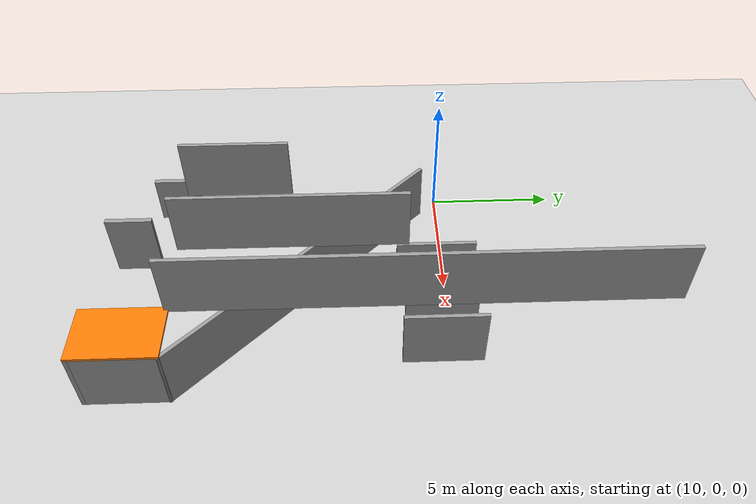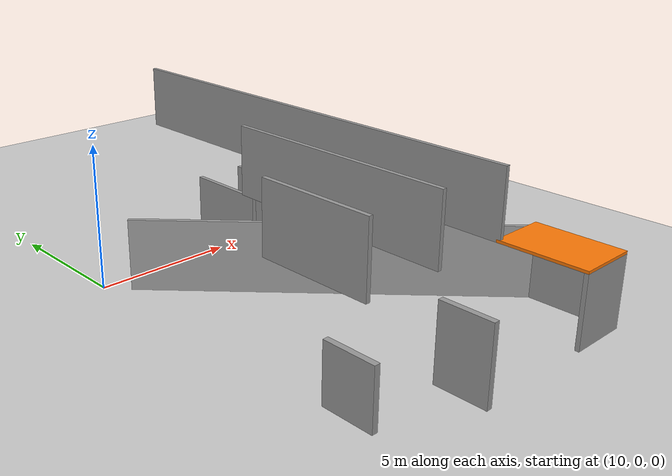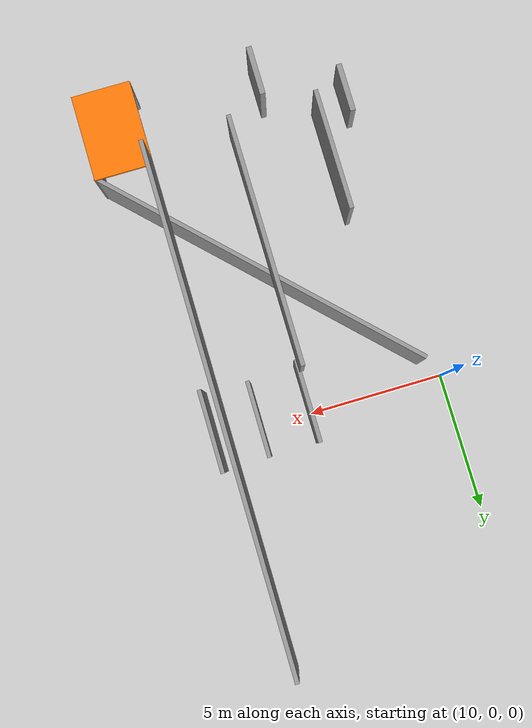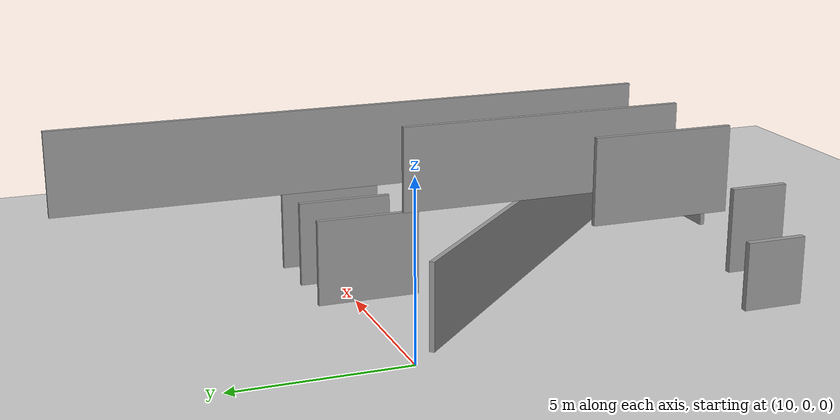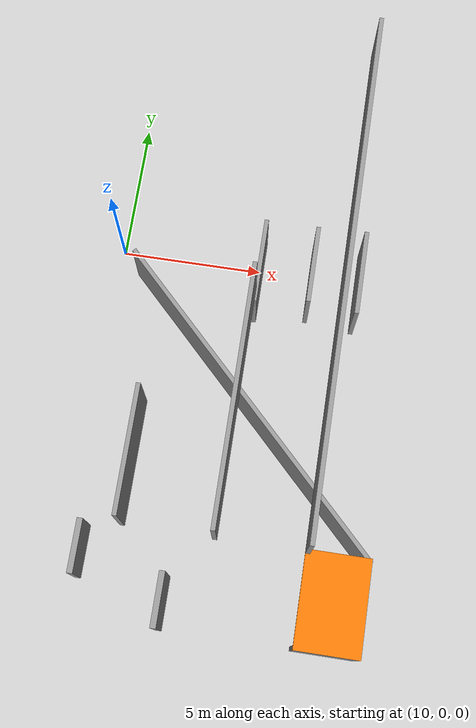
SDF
<sdf version="1.7">
 <world name="me5413_obstacle_world">
  <model name="ground_plane">
   <static>1</static>
   <link name="link">
    <collision name="collision">
     <geometry><plane><normal>0 0 1</normal><size>100 100</size></plane></geometry>
     <surface>
      <contact><collide_bitmask>65535</collide_bitmask></contact>
      <friction><ode><mu>100</mu><mu2>50</mu2></ode></friction>
     </surface>
    </collision>
    <visual name="visual">
     <cast_shadows>0</cast_shadows>
     <geometry><plane><normal>0 0 1</normal><size>100 100</size></plane></geometry>
     <material>
      <script><uri>file://media/materials/scripts/gazebo.material</uri><name>Gazebo/Grey</name></script>
     </material>
    </visual>
   </link>
  </model>
  <model name="smart_house_3_0">
   <link name="Floor_5">
    <pose>21.4845 -10.0155 2.5 0 -0 0</pose>
    <inertial>
     <inertia><ixx>1</ixx><ixy>0</ixy><ixz>0</ixz><iyy>1</iyy><iyz>0</iyz><izz>1</izz></inertia>
     <mass>1</mass>
    </inertial>
    <visual name="Floor_5_Visual">
     <pose>0 0 0.05 0 -0 0</pose>
     <geometry><box><size>2.15 3.15 0.1</size></box></geometry>
     <material>
      <script><uri>file://media/materials/scripts/gazebo.material</uri><name>Gazebo/Grey</name></script>
      <ambient>0.996078 0.47451 0.0196078 1</ambient>
      <shader type="pixel"/>
     </material>
     <meta><layer>1</layer></meta>
    </visual>
    <collision name="Floor_5_Collision">
     <pose>0 0 0.05 0 -0 0</pose>
     <geometry><box><size>2.15 3.15 0.1</size></box></geometry>
     <surface>
      <friction>
       <ode><mu>1</mu><mu2>1</mu2><fdir1>0 0 0</fdir1><slip1>0</slip1><slip2>0</slip2></ode>
       <torsional>
        <coefficient>1</coefficient>
        <patch_radius>0</patch_radius>
        <surface_radius>0</surface_radius>
        <use_patch_radius>1</use_patch_radius>
        <ode><slip>0</slip></ode>
       </torsional>
      </friction>
      <bounce><restitution_coefficient>0</restitution_coefficient><threshold>1e+06</threshold></bounce>
      <contact>
       <collide_without_contact>0</collide_without_contact>
       <collide_without_contact_bitmask>1</collide_without_contact_bitmask>
       <collide_bitmask>1</collide_bitmask>
       <ode>
        <soft_cfm>0</soft_cfm>
        <soft_erp>0.2</soft_erp>
        <kp>1e+13</kp>
        <kd>1</kd>
        <max_vel>0.01</max_vel>
        <min_depth>0</min_depth>
       </ode>
       <bullet>
        <split_impulse>1</split_impulse>
        <split_impulse_penetration_threshold>-0.01</split_impulse_penetration_threshold>
        <soft_cfm>0</soft_cfm>
        <soft_erp>0.2</soft_erp>
        <kp>1e+13</kp>
        <kd>1</kd>
       </bullet>
      </contact>
     </surface>
    </collision>
   </link>
   <link name="Wall_145">
    <pose>17.8529 -3.88398 0 0 -0 2.35619</pose>
    <inertial>
     <inertia><ixx>1</ixx><ixy>0</ixy><ixz>0</ixz><iyy>1</iyy><iyz>0</iyz><izz>1</izz></inertia>
     <mass>1</mass>
    </inertial>
    <visual name="Wall_145_Visual">
     <pose>0 0 1.25 0 -0 0</pose>
     <geometry><box><size>13.25 0.15 2.5</size></box></geometry>
     <material>
      <script><uri>file://media/materials/scripts/gazebo.material</uri><name>Gazebo/Grey</name></script>
      <ambient>1 1 1 1</ambient>
      <shader type="pixel"/>
     </material>
     <meta><layer>0</layer></meta>
    </visual>
    <collision name="Wall_145_Collision">
     <pose>0 0 1.25 0 -0 0</pose>
     <geometry><box><size>13.25 0.15 2.5</size></box></geometry>
     <surface>
      <friction>
       <ode><mu>1</mu><mu2>1</mu2><fdir1>0 0 0</fdir1><slip1>0</slip1><slip2>0</slip2></ode>
       <torsional>
        <coefficient>1</coefficient>
        <patch_radius>0</patch_radius>
        <surface_radius>0</surface_radius>
        <use_patch_radius>1</use_patch_radius>
        <ode><slip>0</slip></ode>
       </torsional>
      </friction>
      <bounce><restitution_coefficient>0</restitution_coefficient><threshold>1e+06</threshold></bounce>
      <contact>
       <collide_without_contact>0</collide_without_contact>
       <collide_without_contact_bitmask>1</collide_without_contact_bitmask>
       <collide_bitmask>1</collide_bitmask>
       <ode>
        <soft_cfm>0</soft_cfm>
        <soft_erp>0.2</soft_erp>
        <kp>1e+13</kp>
        <kd>1</kd>
        <max_vel>0.01</max_vel>
        <min_depth>0</min_depth>
       </ode>
       <bullet>
        <split_impulse>1</split_impulse>
        <split_impulse_penetration_threshold>-0.01</split_impulse_penetration_threshold>
        <soft_cfm>0</soft_cfm>
        <soft_erp>0.2</soft_erp>
        <kp>1e+13</kp>
        <kd>1</kd>
       </bullet>
      </contact>
     </surface>
    </collision>
   </link>
   <link name="Wall_226">
    <pose>22.4845 -10.0155 2.5 0 0 -1.5708</pose>
    <inertial>
     <inertia><ixx>1</ixx><ixy>0</ixy><ixz>0</ixz><iyy>1</iyy><iyz>0</iyz><izz>1</izz></inertia>
     <mass>1</mass>
    </inertial>
    <visual name="Wall_226_Visual">
     <geometry><box><size>3.15 0.15 0</size></box></geometry>
     <material>
      <script><uri>file://media/materials/scripts/gazebo.material</uri><name>Gazebo/Grey</name></script>
      <ambient>1 1 1 1</ambient>
      <shader type="pixel"/>
     </material>
     <meta><layer>1</layer></meta>
    </visual>
    <collision name="Wall_226_Collision">
     <geometry><box><size>3.15 0.15 0</size></box></geometry>
     <surface>
      <friction>
       <ode><mu>1</mu><mu2>1</mu2><fdir1>0 0 0</fdir1><slip1>0</slip1><slip2>0</slip2></ode>
       <torsional>
        <coefficient>1</coefficient>
        <patch_radius>0</patch_radius>
        <surface_radius>0</surface_radius>
        <use_patch_radius>1</use_patch_radius>
        <ode><slip>0</slip></ode>
       </torsional>
      </friction>
      <bounce><restitution_coefficient>0</restitution_coefficient><threshold>1e+06</threshold></bounce>
      <contact>
       <collide_without_contact>0</collide_without_contact>
       <collide_without_contact_bitmask>1</collide_without_contact_bitmask>
       <collide_bitmask>1</collide_bitmask>
       <ode>
        <soft_cfm>0</soft_cfm>
        <soft_erp>0.2</soft_erp>
        <kp>1e+13</kp>
        <kd>1</kd>
        <max_vel>0.01</max_vel>
        <min_depth>0</min_depth>
       </ode>
       <bullet>
        <split_impulse>1</split_impulse>
        <split_impulse_penetration_threshold>-0.01</split_impulse_penetration_threshold>
        <soft_cfm>0</soft_cfm>
        <soft_erp>0.2</soft_erp>
        <kp>1e+13</kp>
        <kd>1</kd>
       </bullet>
      </contact>
     </surface>
    </collision>
   </link>
   <link name="Wall_227">
    <pose>21.4845 -11.5155 2.5 0 -0 3.14159</pose>
    <inertial>
     <inertia><ixx>1</ixx><ixy>0</ixy><ixz>0</ixz><iyy>1</iyy><iyz>0</iyz><izz>1</izz></inertia>
     <mass>1</mass>
    </inertial>
    <visual name="Wall_227_Visual">
     <geometry><box><size>2.15 0.15 0</size></box></geometry>
     <material>
      <script><uri>file://media/materials/scripts/gazebo.material</uri><name>Gazebo/Grey</name></script>
      <ambient>1 1 1 1</ambient>
      <shader type="pixel"/>
     </material>
     <meta><layer>1</layer></meta>
    </visual>
    <collision name="Wall_227_Collision">
     <geometry><box><size>2.15 0.15 0</size></box></geometry>
     <surface>
      <friction>
       <ode><mu>1</mu><mu2>1</mu2><fdir1>0 0 0</fdir1><slip1>0</slip1><slip2>0</slip2></ode>
       <torsional>
        <coefficient>1</coefficient>
        <patch_radius>0</patch_radius>
        <surface_radius>0</surface_radius>
        <use_patch_radius>1</use_patch_radius>
        <ode><slip>0</slip></ode>
       </torsional>
      </friction>
      <bounce><restitution_coefficient>0</restitution_coefficient><threshold>1e+06</threshold></bounce>
      <contact>
       <collide_without_contact>0</collide_without_contact>
       <collide_without_contact_bitmask>1</collide_without_contact_bitmask>
       <collide_bitmask>1</collide_bitmask>
       <ode>
        <soft_cfm>0</soft_cfm>
        <soft_erp>0.2</soft_erp>
        <kp>1e+13</kp>
        <kd>1</kd>
        <max_vel>0.01</max_vel>
        <min_depth>0</min_depth>
       </ode>
       <bullet>
        <split_impulse>1</split_impulse>
        <split_impulse_penetration_threshold>-0.01</split_impulse_penetration_threshold>
        <soft_cfm>0</soft_cfm>
        <soft_erp>0.2</soft_erp>
        <kp>1e+13</kp>
        <kd>1</kd>
       </bullet>
      </contact>
     </surface>
    </collision>
   </link>
   <link name="Wall_265">
    <pose>20.4845 0.484467 2.5 0 -0 1.5708</pose>
    <inertial>
     <inertia><ixx>1</ixx><ixy>0</ixy><ixz>0</ixz><iyy>1</iyy><iyz>0</iyz><izz>1</izz></inertia>
     <mass>1</mass>
    </inertial>
    <visual name="Wall_265_Visual">
     <pose>0 0 1.25 0 -0 0</pose>
     <geometry><box><size>18.15 0.15 2.5</size></box></geometry>
     <material>
      <script><uri>file://media/materials/scripts/gazebo.material</uri><name>Gazebo/Grey</name></script>
      <ambient>1 1 1 1</ambient>
      <shader type="pixel"/>
     </material>
     <meta><layer>2</layer></meta>
    </visual>
    <collision name="Wall_265_Collision">
     <pose>0 0 1.25 0 -0 0</pose>
     <geometry><box><size>18.15 0.15 2.5</size></box></geometry>
     <surface>
      <friction>
       <ode><mu>1</mu><mu2>1</mu2><fdir1>0 0 0</fdir1><slip1>0</slip1><slip2>0</slip2></ode>
       <torsional>
        <coefficient>1</coefficient>
        <patch_radius>0</patch_radius>
        <surface_radius>0</surface_radius>
        <use_patch_radius>1</use_patch_radius>
        <ode><slip>0</slip></ode>
       </torsional>
      </friction>
      <bounce><restitution_coefficient>0</restitution_coefficient><threshold>1e+06</threshold></bounce>
      <contact>
       <collide_without_contact>0</collide_without_contact>
       <collide_without_contact_bitmask>1</collide_without_contact_bitmask>
       <collide_bitmask>1</collide_bitmask>
       <ode>
        <soft_cfm>0</soft_cfm>
        <soft_erp>0.2</soft_erp>
        <kp>1e+13</kp>
        <kd>1</kd>
        <max_vel>0.01</max_vel>
        <min_depth>0</min_depth>
       </ode>
       <bullet>
        <split_impulse>1</split_impulse>
        <split_impulse_penetration_threshold>-0.01</split_impulse_penetration_threshold>
        <soft_cfm>0</soft_cfm>
        <soft_erp>0.2</soft_erp>
        <kp>1e+13</kp>
        <kd>1</kd>
       </bullet>
      </contact>
     </surface>
    </collision>
   </link>
   <link name="Wall_276">
    <pose>17.4845 -4.26553 2.5 0 0 -1.5708</pose>
    <inertial>
     <inertia><ixx>1</ixx><ixy>0</ixy><ixz>0</ixz><iyy>1</iyy><iyz>0</iyz><izz>1</izz></inertia>
     <mass>1</mass>
    </inertial>
    <visual name="Wall_276_Visual">
     <pose>0 0 1.25 0 -0 0</pose>
     <geometry><box><size>8.65 0.15 2.5</size></box></geometry>
     <material>
      <script><uri>file://media/materials/scripts/gazebo.material</uri><name>Gazebo/Grey</name></script>
      <ambient>1 1 1 1</ambient>
      <shader type="pixel"/>
     </material>
     <meta><layer>2</layer></meta>
    </visual>
    <collision name="Wall_276_Collision">
     <pose>0 0 1.25 0 -0 0</pose>
     <geometry><box><size>8.65 0.15 2.5</size></box></geometry>
     <surface>
      <friction>
       <ode><mu>1</mu><mu2>1</mu2><fdir1>0 0 0</fdir1><slip1>0</slip1><slip2>0</slip2></ode>
       <torsional>
        <coefficient>1</coefficient>
        <patch_radius>0</patch_radius>
        <surface_radius>0</surface_radius>
        <use_patch_radius>1</use_patch_radius>
        <ode><slip>0</slip></ode>
       </torsional>
      </friction>
      <bounce><restitution_coefficient>0</restitution_coefficient><threshold>1e+06</threshold></bounce>
      <contact>
       <collide_without_contact>0</collide_without_contact>
       <collide_without_contact_bitmask>1</collide_without_contact_bitmask>
       <collide_bitmask>1</collide_bitmask>
       <ode>
        <soft_cfm>0</soft_cfm>
        <soft_erp>0.2</soft_erp>
        <kp>1e+13</kp>
        <kd>1</kd>
        <max_vel>0.01</max_vel>
        <min_depth>0</min_depth>
       </ode>
       <bullet>
        <split_impulse>1</split_impulse>
        <split_impulse_penetration_threshold>-0.01</split_impulse_penetration_threshold>
        <soft_cfm>0</soft_cfm>
        <soft_erp>0.2</soft_erp>
        <kp>1e+13</kp>
        <kd>1</kd>
       </bullet>
      </contact>
     </surface>
    </collision>
   </link>
   <link name="Wall_284">
    <pose>14.4845 -6.51553 2.5 0 -0 1.5708</pose>
    <inertial>
     <inertia><ixx>1</ixx><ixy>0</ixy><ixz>0</ixz><iyy>1</iyy><iyz>0</iyz><izz>1</izz></inertia>
     <mass>1</mass>
    </inertial>
    <visual name="Wall_284_Visual">
     <pose>0 0 1.25 0 -0 0</pose>
     <geometry><box><size>4.15 0.15 2.5</size></box></geometry>
     <material>
      <script><uri>file://media/materials/scripts/gazebo.material</uri><name>Gazebo/Grey</name></script>
      <ambient>1 1 1 1</ambient>
      <shader type="pixel"/>
     </material>
     <meta><layer>2</layer></meta>
    </visual>
    <collision name="Wall_284_Collision">
     <pose>0 0 1.25 0 -0 0</pose>
     <geometry><box><size>4.15 0.15 2.5</size></box></geometry>
     <surface>
      <friction>
       <ode><mu>1</mu><mu2>1</mu2><fdir1>0 0 0</fdir1><slip1>0</slip1><slip2>0</slip2></ode>
       <torsional>
        <coefficient>1</coefficient>
        <patch_radius>0</patch_radius>
        <surface_radius>0</surface_radius>
        <use_patch_radius>1</use_patch_radius>
        <ode><slip>0</slip></ode>
       </torsional>
      </friction>
      <bounce><restitution_coefficient>0</restitution_coefficient><threshold>1e+06</threshold></bounce>
      <contact>
       <collide_without_contact>0</collide_without_contact>
       <collide_without_contact_bitmask>1</collide_without_contact_bitmask>
       <collide_bitmask>1</collide_bitmask>
       <ode>
        <soft_cfm>0</soft_cfm>
        <soft_erp>0.2</soft_erp>
        <kp>1e+13</kp>
        <kd>1</kd>
        <max_vel>0.01</max_vel>
        <min_depth>0</min_depth>
       </ode>
       <bullet>
        <split_impulse>1</split_impulse>
        <split_impulse_penetration_threshold>-0.01</split_impulse_penetration_threshold>
        <soft_cfm>0</soft_cfm>
        <soft_erp>0.2</soft_erp>
        <kp>1e+13</kp>
        <kd>1</kd>
       </bullet>
      </contact>
     </surface>
    </collision>
   </link>
   <link name="Wall_77">
    <pose>17.5528 1.09249 0 0 0 -1.5708</pose>
    <inertial>
     <inertia><ixx>1</ixx><ixy>0</ixy><ixz>0</ixz><iyy>1</iyy><iyz>0</iyz><izz>1</izz></inertia>
     <mass>1</mass>
    </inertial>
    <visual name="Wall_77_Visual">
     <pose>0 0 1.25 0 -0 0</pose>
     <geometry><box><size>3 0.15 2.5</size></box></geometry>
     <material>
      <script><uri>file://media/materials/scripts/gazebo.material</uri><name>Gazebo/Grey</name></script>
      <ambient>1 1 1 1</ambient>
      <shader type="pixel"/>
     </material>
     <meta><layer>0</layer></meta>
    </visual>
    <collision name="Wall_77_Collision">
     <pose>0 0 1.25 0 -0 0</pose>
     <geometry><box><size>3 0.15 2.5</size></box></geometry>
     <surface>
      <friction>
       <ode><mu>1</mu><mu2>1</mu2><fdir1>0 0 0</fdir1><slip1>0</slip1><slip2>0</slip2></ode>
       <torsional>
        <coefficient>1</coefficient>
        <patch_radius>0</patch_radius>
        <surface_radius>0</surface_radius>
        <use_patch_radius>1</use_patch_radius>
        <ode><slip>0</slip></ode>
       </torsional>
      </friction>
      <bounce><restitution_coefficient>0</restitution_coefficient><threshold>1e+06</threshold></bounce>
      <contact>
       <collide_without_contact>0</collide_without_contact>
       <collide_without_contact_bitmask>1</collide_without_contact_bitmask>
       <collide_bitmask>1</collide_bitmask>
       <ode>
        <soft_cfm>0</soft_cfm>
        <soft_erp>0.2</soft_erp>
        <kp>1e+13</kp>
        <kd>1</kd>
        <max_vel>0.01</max_vel>
        <min_depth>0</min_depth>
       </ode>
       <bullet>
        <split_impulse>1</split_impulse>
        <split_impulse_penetration_threshold>-0.01</split_impulse_penetration_threshold>
        <soft_cfm>0</soft_cfm>
        <soft_erp>0.2</soft_erp>
        <kp>1e+13</kp>
        <kd>1</kd>
       </bullet>
      </contact>
     </surface>
    </collision>
   </link>
   <link name="Wall_79">
    <pose>19.3821 1.21749 0 0 0 -1.5708</pose>
    <inertial>
     <inertia><ixx>1</ixx><ixy>0</ixy><ixz>0</ixz><iyy>1</iyy><iyz>0</iyz><izz>1</izz></inertia>
     <mass>1</mass>
    </inertial>
    <visual name="Wall_79_Visual">
     <pose>0 0 1.25 0 -0 0</pose>
     <geometry><box><size>2.75 0.15 2.5</size></box></geometry>
     <material>
      <script><uri>file://media/materials/scripts/gazebo.material</uri><name>Gazebo/Grey</name></script>
      <ambient>1 1 1 1</ambient>
      <shader type="pixel"/>
     </material>
     <meta><layer>0</layer></meta>
    </visual>
    <collision name="Wall_79_Collision">
     <pose>0 0 1.25 0 -0 0</pose>
     <geometry><box><size>2.75 0.15 2.5</size></box></geometry>
     <surface>
      <friction>
       <ode><mu>1</mu><mu2>1</mu2><fdir1>0 0 0</fdir1><slip1>0</slip1><slip2>0</slip2></ode>
       <torsional>
        <coefficient>1</coefficient>
        <patch_radius>0</patch_radius>
        <surface_radius>0</surface_radius>
        <use_patch_radius>1</use_patch_radius>
        <ode><slip>0</slip></ode>
       </torsional>
      </friction>
      <bounce><restitution_coefficient>0</restitution_coefficient><threshold>1e+06</threshold></bounce>
      <contact>
       <collide_without_contact>0</collide_without_contact>
       <collide_without_contact_bitmask>1</collide_without_contact_bitmask>
       <collide_bitmask>1</collide_bitmask>
       <ode>
        <soft_cfm>0</soft_cfm>
        <soft_erp>0.2</soft_erp>
        <kp>1e+13</kp>
        <kd>1</kd>
        <max_vel>0.01</max_vel>
        <min_depth>0</min_depth>
       </ode>
       <bullet>
        <split_impulse>1</split_impulse>
        <split_impulse_penetration_threshold>-0.01</split_impulse_penetration_threshold>
        <soft_cfm>0</soft_cfm>
        <soft_erp>0.2</soft_erp>
        <kp>1e+13</kp>
        <kd>1</kd>
       </bullet>
      </contact>
     </surface>
    </collision>
   </link>
   <link name="Wall_81">
    <pose>21.0707 1.16285 0 0 0 -1.5708</pose>
    <inertial>
     <inertia><ixx>1</ixx><ixy>0</ixy><ixz>0</ixz><iyy>1</iyy><iyz>0</iyz><izz>1</izz></inertia>
     <mass>1</mass>
    </inertial>
    <visual name="Wall_81_Visual">
     <pose>0 0 1.25 0 -0 0</pose>
     <geometry><box><size>3 0.15 2.5</size></box></geometry>
     <material>
      <script><uri>file://media/materials/scripts/gazebo.material</uri><name>Gazebo/Grey</name></script>
      <ambient>1 1 1 1</ambient>
      <shader type="pixel"/>
     </material>
     <meta><layer>0</layer></meta>
    </visual>
    <collision name="Wall_81_Collision">
     <pose>0 0 1.25 0 -0 0</pose>
     <geometry><box><size>3 0.15 2.5</size></box></geometry>
     <surface>
      <friction>
       <ode><mu>1</mu><mu2>1</mu2><fdir1>0 0 0</fdir1><slip1>0</slip1><slip2>0</slip2></ode>
       <torsional>
        <coefficient>1</coefficient>
        <patch_radius>0</patch_radius>
        <surface_radius>0</surface_radius>
        <use_patch_radius>1</use_patch_radius>
        <ode><slip>0</slip></ode>
       </torsional>
      </friction>
      <bounce><restitution_coefficient>0</restitution_coefficient><threshold>1e+06</threshold></bounce>
      <contact>
       <collide_without_contact>0</collide_without_contact>
       <collide_without_contact_bitmask>1</collide_without_contact_bitmask>
       <collide_bitmask>1</collide_bitmask>
       <ode>
        <soft_cfm>0</soft_cfm>
        <soft_erp>0.2</soft_erp>
        <kp>1e+13</kp>
        <kd>1</kd>
        <max_vel>0.01</max_vel>
        <min_depth>0</min_depth>
       </ode>
       <bullet>
        <split_impulse>1</split_impulse>
        <split_impulse_penetration_threshold>-0.01</split_impulse_penetration_threshold>
        <soft_cfm>0</soft_cfm>
        <soft_erp>0.2</soft_erp>
        <kp>1e+13</kp>
        <kd>1</kd>
       </bullet>
      </contact>
     </surface>
    </collision>
   </link>
   <link name="Wall_86">
    <pose>22.4845 -10.0155 0 0 0 -1.5708</pose>
    <inertial>
     <inertia><ixx>1</ixx><ixy>0</ixy><ixz>0</ixz><iyy>1</iyy><iyz>0</iyz><izz>1</izz></inertia>
     <mass>1</mass>
    </inertial>
    <visual name="Wall_86_Visual">
     <pose>0 0 1.25 0 -0 0</pose>
     <geometry><box><size>3.15 0.15 2.5</size></box></geometry>
     <material>
      <script><uri>file://media/materials/scripts/gazebo.material</uri><name>Gazebo/Grey</name></script>
      <ambient>1 1 1 1</ambient>
      <shader type="pixel"/>
     </material>
     <meta><layer>0</layer></meta>
    </visual>
    <collision name="Wall_86_Collision">
     <pose>0 0 1.25 0 -0 0</pose>
     <geometry><box><size>3.15 0.15 2.5</size></box></geometry>
     <surface>
      <friction>
       <ode><mu>1</mu><mu2>1</mu2><fdir1>0 0 0</fdir1><slip1>0</slip1><slip2>0</slip2></ode>
       <torsional>
        <coefficient>1</coefficient>
        <patch_radius>0</patch_radius>
        <surface_radius>0</surface_radius>
        <use_patch_radius>1</use_patch_radius>
        <ode><slip>0</slip></ode>
       </torsional>
      </friction>
      <bounce><restitution_coefficient>0</restitution_coefficient><threshold>1e+06</threshold></bounce>
      <contact>
       <collide_without_contact>0</collide_without_contact>
       <collide_without_contact_bitmask>1</collide_without_contact_bitmask>
       <collide_bitmask>1</collide_bitmask>
       <ode>
        <soft_cfm>0</soft_cfm>
        <soft_erp>0.2</soft_erp>
        <kp>1e+13</kp>
        <kd>1</kd>
        <max_vel>0.01</max_vel>
        <min_depth>0</min_depth>
       </ode>
       <bullet>
        <split_impulse>1</split_impulse>
        <split_impulse_penetration_threshold>-0.01</split_impulse_penetration_threshold>
        <soft_cfm>0</soft_cfm>
        <soft_erp>0.2</soft_erp>
        <kp>1e+13</kp>
        <kd>1</kd>
       </bullet>
      </contact>
     </surface>
    </collision>
   </link>
   <link name="Wall_87">
    <pose>21.4845 -11.5155 0 0 -0 3.14159</pose>
    <inertial>
     <inertia><ixx>1</ixx><ixy>0</ixy><ixz>0</ixz><iyy>1</iyy><iyz>0</iyz><izz>1</izz></inertia>
     <mass>1</mass>
    </inertial>
    <visual name="Wall_87_Visual">
     <pose>0 0 1.25 0 -0 0</pose>
     <geometry><box><size>2.15 0.15 2.5</size></box></geometry>
     <material>
      <script><uri>file://media/materials/scripts/gazebo.material</uri><name>Gazebo/Grey</name></script>
      <ambient>1 1 1 1</ambient>
      <shader type="pixel"/>
     </material>
     <meta><layer>0</layer></meta>
    </visual>
    <collision name="Wall_87_Collision">
     <pose>0 0 1.25 0 -0 0</pose>
     <geometry><box><size>2.15 0.15 2.5</size></box></geometry>
     <surface>
      <friction>
       <ode><mu>1</mu><mu2>1</mu2><fdir1>0 0 0</fdir1><slip1>0</slip1><slip2>0</slip2></ode>
       <torsional>
        <coefficient>1</coefficient>
        <patch_radius>0</patch_radius>
        <surface_radius>0</surface_radius>
        <use_patch_radius>1</use_patch_radius>
        <ode><slip>0</slip></ode>
       </torsional>
      </friction>
      <bounce><restitution_coefficient>0</restitution_coefficient><threshold>1e+06</threshold></bounce>
      <contact>
       <collide_without_contact>0</collide_without_contact>
       <collide_without_contact_bitmask>1</collide_without_contact_bitmask>
       <collide_bitmask>1</collide_bitmask>
       <ode>
        <soft_cfm>0</soft_cfm>
        <soft_erp>0.2</soft_erp>
        <kp>1e+13</kp>
        <kd>1</kd>
        <max_vel>0.01</max_vel>
        <min_depth>0</min_depth>
       </ode>
       <bullet>
        <split_impulse>1</split_impulse>
        <split_impulse_penetration_threshold>-0.01</split_impulse_penetration_threshold>
        <soft_cfm>0</soft_cfm>
        <soft_erp>0.2</soft_erp>
        <kp>1e+13</kp>
        <kd>1</kd>
       </bullet>
      </contact>
     </surface>
    </collision>
   </link>
   <link name="link_1_clone">
    <inertial>
     <mass>1</mass>
     <inertia>
      <ixx>0.166667</ixx>
      <ixy>0</ixy>
      <ixz>0</ixz>
      <iyy>0.166667</iyy>
      <iyz>0</iyz>
      <izz>0.166667</izz>
     </inertia>
    </inertial>
    <pose>13 -9.4 1 0 -0 0</pose>
    <visual name="visual">
     <geometry><box><size>0.2 1.8 2</size></box></geometry>
     <material>
      <lighting>1</lighting>
      <script><uri>file://media/materials/scripts/gazebo.material</uri><name>Gazebo/Grey</name></script>
      <shader type="pixel"><normal_map>__default__</normal_map></shader>
      <ambient>0.3 0.3 0.3 1</ambient>
      <diffuse>0.7 0.7 0.7 1</diffuse>
      <specular>0.01 0.01 0.01 1</specular>
      <emissive>0 0 0 1</emissive>
     </material>
    </visual>
    <collision name="collision">
     <geometry><box><size>0.2 1.8 2</size></box></geometry>
     <surface>
      <friction>
       <ode><mu>1</mu><mu2>1</mu2><fdir1>0 0 0</fdir1><slip1>0</slip1><slip2>0</slip2></ode>
       <torsional>
        <coefficient>1</coefficient>
        <patch_radius>0</patch_radius>
        <surface_radius>0</surface_radius>
        <use_patch_radius>1</use_patch_radius>
        <ode><slip>0</slip></ode>
       </torsional>
      </friction>
      <bounce><restitution_coefficient>0</restitution_coefficient><threshold>1e+06</threshold></bounce>
      <contact>
       <collide_without_contact>0</collide_without_contact>
       <collide_without_contact_bitmask>1</collide_without_contact_bitmask>
       <collide_bitmask>1</collide_bitmask>
       <ode>
        <soft_cfm>0</soft_cfm>
        <soft_erp>0.2</soft_erp>
        <kp>1e+13</kp>
        <kd>1</kd>
        <max_vel>0.01</max_vel>
        <min_depth>0</min_depth>
       </ode>
       <bullet>
        <split_impulse>1</split_impulse>
        <split_impulse_penetration_threshold>-0.01</split_impulse_penetration_threshold>
        <soft_cfm>0</soft_cfm>
        <soft_erp>0.2</soft_erp>
        <kp>1e+13</kp>
        <kd>1</kd>
       </bullet>
      </contact>
     </surface>
    </collision>
   </link>
   <link name="link_1_clone_clone">
    <inertial>
     <mass>1</mass>
     <inertia>
      <ixx>0.166667</ixx>
      <ixy>0</ixy>
      <ixz>0</ixz>
      <iyy>0.166667</iyy>
      <iyz>0</iyz>
      <izz>0.166667</izz>
     </inertia>
    </inertial>
    <pose>16 -10.7 1.3 0 -0 0</pose>
    <visual name="visual">
     <geometry><box><size>0.2 1.8 2.6</size></box></geometry>
     <material>
      <lighting>1</lighting>
      <script><uri>file://media/materials/scripts/gazebo.material</uri><name>Gazebo/Grey</name></script>
      <shader type="pixel"><normal_map>__default__</normal_map></shader>
      <ambient>0.3 0.3 0.3 1</ambient>
      <diffuse>0.7 0.7 0.7 1</diffuse>
      <specular>0.01 0.01 0.01 1</specular>
      <emissive>0 0 0 1</emissive>
     </material>
    </visual>
    <collision name="collision">
     <geometry><box><size>0.2 1.8 2.6</size></box></geometry>
     <surface>
      <friction>
       <ode><mu>1</mu><mu2>1</mu2><fdir1>0 0 0</fdir1><slip1>0</slip1><slip2>0</slip2></ode>
       <torsional>
        <coefficient>1</coefficient>
        <patch_radius>0</patch_radius>
        <surface_radius>0</surface_radius>
        <use_patch_radius>1</use_patch_radius>
        <ode><slip>0</slip></ode>
       </torsional>
      </friction>
      <bounce><restitution_coefficient>0</restitution_coefficient><threshold>1e+06</threshold></bounce>
      <contact>
       <collide_without_contact>0</collide_without_contact>
       <collide_without_contact_bitmask>1</collide_without_contact_bitmask>
       <collide_bitmask>1</collide_bitmask>
       <ode>
        <soft_cfm>0</soft_cfm>
        <soft_erp>0.2</soft_erp>
        <kp>1e+13</kp>
        <kd>1</kd>
        <max_vel>0.01</max_vel>
        <min_depth>0</min_depth>
       </ode>
       <bullet>
        <split_impulse>1</split_impulse>
        <split_impulse_penetration_threshold>-0.01</split_impulse_penetration_threshold>
        <soft_cfm>0</soft_cfm>
        <soft_erp>0.2</soft_erp>
        <kp>1e+13</kp>
        <kd>1</kd>
       </bullet>
      </contact>
     </surface>
    </collision>
   </link>
   <static>1</static>
   <pose>-2.5 -1.5 0 0 -0 0</pose>
  </model>
 </world>
</sdf>
